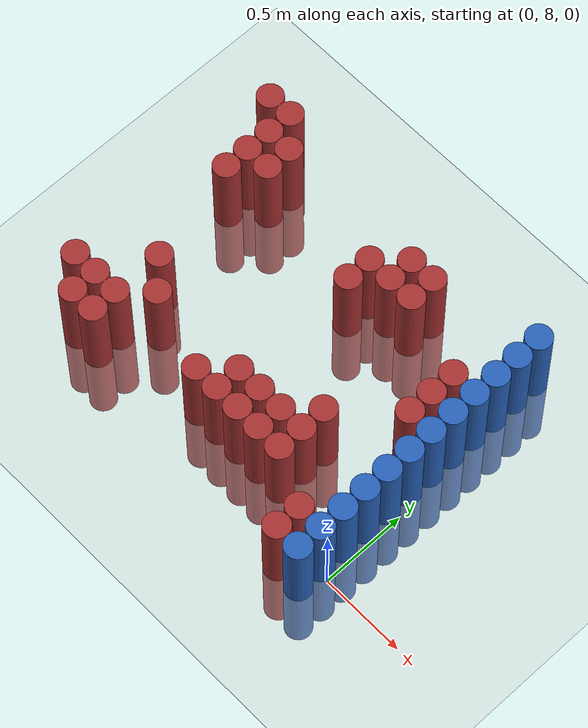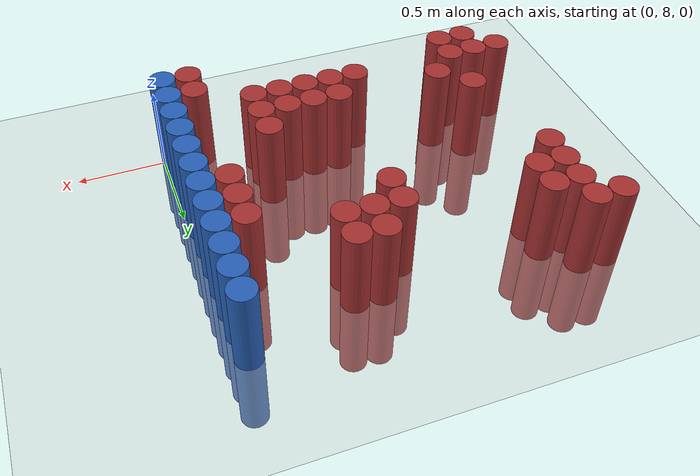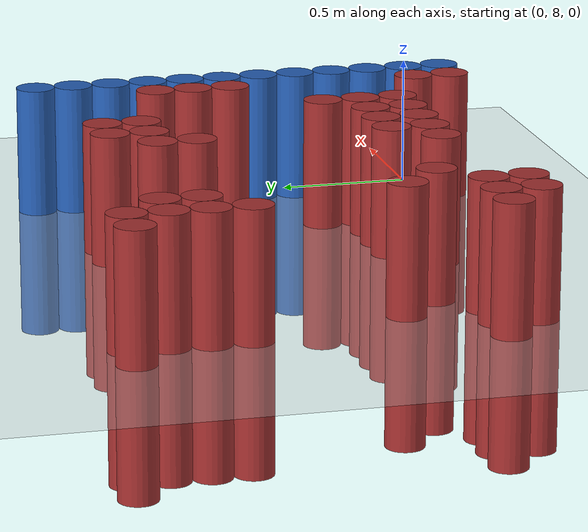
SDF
<sdf version="1.6">
 <world name="default">
  <model name="ground_plane">
   <static>1</static>
   <link name="link">
    <collision name="collision">
     <geometry><plane><normal>0 0 1</normal><size>100 100</size></plane></geometry>
     <surface><friction><ode><mu>100</mu><mu2>50</mu2></ode></friction></surface>
    </collision>
    <visual name="visual">
     <cast_shadows>0</cast_shadows>
     <geometry><plane><normal>0 0 1</normal><size>100 100</size></plane></geometry>
     <material>
      <script><uri>file://media/materials/scripts/gazebo.material</uri><name>Gazebo/Grey</name></script>
     </material>
    </visual>
   </link>
  </model>
  <model name="unit_cylinder_180">
   <static>1</static>
   <pose>-2.025000 8.175000 0.000000 0.000000 0.000000 0.000000</pose>
   <link name="link">
    <inertial>
     <mass>1</mass>
     <inertia><ixx>0.145833</ixx><ixy>0</ixy><ixz>0</ixz><iyy>0.145833</iyy><iyz>0</iyz><izz>0.125</izz></inertia>
    </inertial>
    <collision name="collision">
     <geometry><cylinder><radius>0.075000</radius><length>1</length></cylinder></geometry>
    </collision>
    <visual name="visual">
     <geometry><cylinder><radius>0.075000</radius><length>1</length></cylinder></geometry>
     <material>
      <ambient>0.648000 0.192000 0.192000 1</ambient>
      <diffuse>0.648000 0.192000 0.192000 1</diffuse>
     </material>
     <material>
      <script><name>Gazebo/Grey</name><uri>file://media/materials/scripts/gazebo.material</uri></script>
     </material>
    </visual>
   </link>
  </model>
  <model name="unit_cylinder_181">
   <static>1</static>
   <pose>-2.025000 9.525000 0.000000 0.000000 0.000000 0.000000</pose>
   <link name="link">
    <inertial>
     <mass>1</mass>
     <inertia><ixx>0.145833</ixx><ixy>0</ixy><ixz>0</ixz><iyy>0.145833</iyy><iyz>0</iyz><izz>0.125</izz></inertia>
    </inertial>
    <collision name="collision">
     <geometry><cylinder><radius>0.075000</radius><length>1</length></cylinder></geometry>
    </collision>
    <visual name="visual">
     <geometry><cylinder><radius>0.075000</radius><length>1</length></cylinder></geometry>
     <material>
      <ambient>0.648000 0.192000 0.192000 1</ambient>
      <diffuse>0.648000 0.192000 0.192000 1</diffuse>
     </material>
     <material>
      <script><name>Gazebo/Grey</name><uri>file://media/materials/scripts/gazebo.material</uri></script>
     </material>
    </visual>
   </link>
  </model>
  <model name="unit_cylinder_183">
   <static>1</static>
   <pose>-1.875000 8.025000 0.000000 0.000000 0.000000 0.000000</pose>
   <link name="link">
    <inertial>
     <mass>1</mass>
     <inertia><ixx>0.145833</ixx><ixy>0</ixy><ixz>0</ixz><iyy>0.145833</iyy><iyz>0</iyz><izz>0.125</izz></inertia>
    </inertial>
    <collision name="collision">
     <geometry><cylinder><radius>0.075000</radius><length>1</length></cylinder></geometry>
    </collision>
    <visual name="visual">
     <geometry><cylinder><radius>0.075000</radius><length>1</length></cylinder></geometry>
     <material>
      <ambient>0.648000 0.192000 0.192000 1</ambient>
      <diffuse>0.648000 0.192000 0.192000 1</diffuse>
     </material>
     <material>
      <script><name>Gazebo/Grey</name><uri>file://media/materials/scripts/gazebo.material</uri></script>
     </material>
    </visual>
   </link>
  </model>
  <model name="unit_cylinder_184">
   <static>1</static>
   <pose>-1.875000 8.175000 0.000000 0.000000 0.000000 0.000000</pose>
   <link name="link">
    <inertial>
     <mass>1</mass>
     <inertia><ixx>0.145833</ixx><ixy>0</ixy><ixz>0</ixz><iyy>0.145833</iyy><iyz>0</iyz><izz>0.125</izz></inertia>
    </inertial>
    <collision name="collision">
     <geometry><cylinder><radius>0.075000</radius><length>1</length></cylinder></geometry>
    </collision>
    <visual name="visual">
     <geometry><cylinder><radius>0.075000</radius><length>1</length></cylinder></geometry>
     <material>
      <ambient>0.648000 0.192000 0.192000 1</ambient>
      <diffuse>0.648000 0.192000 0.192000 1</diffuse>
     </material>
     <material>
      <script><name>Gazebo/Grey</name><uri>file://media/materials/scripts/gazebo.material</uri></script>
     </material>
    </visual>
   </link>
  </model>
  <model name="unit_cylinder_185">
   <static>1</static>
   <pose>-1.875000 9.075000 0.000000 0.000000 0.000000 0.000000</pose>
   <link name="link">
    <inertial>
     <mass>1</mass>
     <inertia><ixx>0.145833</ixx><ixy>0</ixy><ixz>0</ixz><iyy>0.145833</iyy><iyz>0</iyz><izz>0.125</izz></inertia>
    </inertial>
    <collision name="collision">
     <geometry><cylinder><radius>0.075000</radius><length>1</length></cylinder></geometry>
    </collision>
    <visual name="visual">
     <geometry><cylinder><radius>0.075000</radius><length>1</length></cylinder></geometry>
     <material>
      <ambient>0.648000 0.192000 0.192000 1</ambient>
      <diffuse>0.648000 0.192000 0.192000 1</diffuse>
     </material>
     <material>
      <script><name>Gazebo/Grey</name><uri>file://media/materials/scripts/gazebo.material</uri></script>
     </material>
    </visual>
   </link>
  </model>
  <model name="unit_cylinder_186">
   <static>1</static>
   <pose>-1.875000 9.225000 0.000000 0.000000 0.000000 0.000000</pose>
   <link name="link">
    <inertial>
     <mass>1</mass>
     <inertia><ixx>0.145833</ixx><ixy>0</ixy><ixz>0</ixz><iyy>0.145833</iyy><iyz>0</iyz><izz>0.125</izz></inertia>
    </inertial>
    <collision name="collision">
     <geometry><cylinder><radius>0.075000</radius><length>1</length></cylinder></geometry>
    </collision>
    <visual name="visual">
     <geometry><cylinder><radius>0.075000</radius><length>1</length></cylinder></geometry>
     <material>
      <ambient>0.648000 0.192000 0.192000 1</ambient>
      <diffuse>0.648000 0.192000 0.192000 1</diffuse>
     </material>
     <material>
      <script><name>Gazebo/Grey</name><uri>file://media/materials/scripts/gazebo.material</uri></script>
     </material>
    </visual>
   </link>
  </model>
  <model name="unit_cylinder_187">
   <static>1</static>
   <pose>-1.875000 9.375000 0.000000 0.000000 0.000000 0.000000</pose>
   <link name="link">
    <inertial>
     <mass>1</mass>
     <inertia><ixx>0.145833</ixx><ixy>0</ixy><ixz>0</ixz><iyy>0.145833</iyy><iyz>0</iyz><izz>0.125</izz></inertia>
    </inertial>
    <collision name="collision">
     <geometry><cylinder><radius>0.075000</radius><length>1</length></cylinder></geometry>
    </collision>
    <visual name="visual">
     <geometry><cylinder><radius>0.075000</radius><length>1</length></cylinder></geometry>
     <material>
      <ambient>0.648000 0.192000 0.192000 1</ambient>
      <diffuse>0.648000 0.192000 0.192000 1</diffuse>
     </material>
     <material>
      <script><name>Gazebo/Grey</name><uri>file://media/materials/scripts/gazebo.material</uri></script>
     </material>
    </visual>
   </link>
  </model>
  <model name="unit_cylinder_188">
   <static>1</static>
   <pose>-1.875000 9.525000 0.000000 0.000000 0.000000 0.000000</pose>
   <link name="link">
    <inertial>
     <mass>1</mass>
     <inertia><ixx>0.145833</ixx><ixy>0</ixy><ixz>0</ixz><iyy>0.145833</iyy><iyz>0</iyz><izz>0.125</izz></inertia>
    </inertial>
    <collision name="collision">
     <geometry><cylinder><radius>0.075000</radius><length>1</length></cylinder></geometry>
    </collision>
    <visual name="visual">
     <geometry><cylinder><radius>0.075000</radius><length>1</length></cylinder></geometry>
     <material>
      <ambient>0.648000 0.192000 0.192000 1</ambient>
      <diffuse>0.648000 0.192000 0.192000 1</diffuse>
     </material>
     <material>
      <script><name>Gazebo/Grey</name><uri>file://media/materials/scripts/gazebo.material</uri></script>
     </material>
    </visual>
   </link>
  </model>
  <model name="unit_cylinder_190">
   <static>1</static>
   <pose>-1.725000 8.025000 0.000000 0.000000 0.000000 0.000000</pose>
   <link name="link">
    <inertial>
     <mass>1</mass>
     <inertia><ixx>0.145833</ixx><ixy>0</ixy><ixz>0</ixz><iyy>0.145833</iyy><iyz>0</iyz><izz>0.125</izz></inertia>
    </inertial>
    <collision name="collision">
     <geometry><cylinder><radius>0.075000</radius><length>1</length></cylinder></geometry>
    </collision>
    <visual name="visual">
     <geometry><cylinder><radius>0.075000</radius><length>1</length></cylinder></geometry>
     <material>
      <ambient>0.648000 0.192000 0.192000 1</ambient>
      <diffuse>0.648000 0.192000 0.192000 1</diffuse>
     </material>
     <material>
      <script><name>Gazebo/Grey</name><uri>file://media/materials/scripts/gazebo.material</uri></script>
     </material>
    </visual>
   </link>
  </model>
  <model name="unit_cylinder_191">
   <static>1</static>
   <pose>-1.725000 8.175000 0.000000 0.000000 0.000000 0.000000</pose>
   <link name="link">
    <inertial>
     <mass>1</mass>
     <inertia><ixx>0.145833</ixx><ixy>0</ixy><ixz>0</ixz><iyy>0.145833</iyy><iyz>0</iyz><izz>0.125</izz></inertia>
    </inertial>
    <collision name="collision">
     <geometry><cylinder><radius>0.075000</radius><length>1</length></cylinder></geometry>
    </collision>
    <visual name="visual">
     <geometry><cylinder><radius>0.075000</radius><length>1</length></cylinder></geometry>
     <material>
      <ambient>0.648000 0.192000 0.192000 1</ambient>
      <diffuse>0.648000 0.192000 0.192000 1</diffuse>
     </material>
     <material>
      <script><name>Gazebo/Grey</name><uri>file://media/materials/scripts/gazebo.material</uri></script>
     </material>
    </visual>
   </link>
  </model>
  <model name="unit_cylinder_192">
   <static>1</static>
   <pose>-1.725000 8.475000 0.000000 0.000000 0.000000 0.000000</pose>
   <link name="link">
    <inertial>
     <mass>1</mass>
     <inertia><ixx>0.145833</ixx><ixy>0</ixy><ixz>0</ixz><iyy>0.145833</iyy><iyz>0</iyz><izz>0.125</izz></inertia>
    </inertial>
    <collision name="collision">
     <geometry><cylinder><radius>0.075000</radius><length>1</length></cylinder></geometry>
    </collision>
    <visual name="visual">
     <geometry><cylinder><radius>0.075000</radius><length>1</length></cylinder></geometry>
     <material>
      <ambient>0.648000 0.192000 0.192000 1</ambient>
      <diffuse>0.648000 0.192000 0.192000 1</diffuse>
     </material>
     <material>
      <script><name>Gazebo/Grey</name><uri>file://media/materials/scripts/gazebo.material</uri></script>
     </material>
    </visual>
   </link>
  </model>
  <model name="unit_cylinder_193">
   <static>1</static>
   <pose>-1.725000 9.225000 0.000000 0.000000 0.000000 0.000000</pose>
   <link name="link">
    <inertial>
     <mass>1</mass>
     <inertia><ixx>0.145833</ixx><ixy>0</ixy><ixz>0</ixz><iyy>0.145833</iyy><iyz>0</iyz><izz>0.125</izz></inertia>
    </inertial>
    <collision name="collision">
     <geometry><cylinder><radius>0.075000</radius><length>1</length></cylinder></geometry>
    </collision>
    <visual name="visual">
     <geometry><cylinder><radius>0.075000</radius><length>1</length></cylinder></geometry>
     <material>
      <ambient>0.648000 0.192000 0.192000 1</ambient>
      <diffuse>0.648000 0.192000 0.192000 1</diffuse>
     </material>
     <material>
      <script><name>Gazebo/Grey</name><uri>file://media/materials/scripts/gazebo.material</uri></script>
     </material>
    </visual>
   </link>
  </model>
  <model name="unit_cylinder_194">
   <static>1</static>
   <pose>-1.725000 9.375000 0.000000 0.000000 0.000000 0.000000</pose>
   <link name="link">
    <inertial>
     <mass>1</mass>
     <inertia><ixx>0.145833</ixx><ixy>0</ixy><ixz>0</ixz><iyy>0.145833</iyy><iyz>0</iyz><izz>0.125</izz></inertia>
    </inertial>
    <collision name="collision">
     <geometry><cylinder><radius>0.075000</radius><length>1</length></cylinder></geometry>
    </collision>
    <visual name="visual">
     <geometry><cylinder><radius>0.075000</radius><length>1</length></cylinder></geometry>
     <material>
      <ambient>0.648000 0.192000 0.192000 1</ambient>
      <diffuse>0.648000 0.192000 0.192000 1</diffuse>
     </material>
     <material>
      <script><name>Gazebo/Grey</name><uri>file://media/materials/scripts/gazebo.material</uri></script>
     </material>
    </visual>
   </link>
  </model>
  <model name="unit_cylinder_195">
   <static>1</static>
   <pose>-1.575000 8.325000 0.000000 0.000000 0.000000 0.000000</pose>
   <link name="link">
    <inertial>
     <mass>1</mass>
     <inertia><ixx>0.145833</ixx><ixy>0</ixy><ixz>0</ixz><iyy>0.145833</iyy><iyz>0</iyz><izz>0.125</izz></inertia>
    </inertial>
    <collision name="collision">
     <geometry><cylinder><radius>0.075000</radius><length>1</length></cylinder></geometry>
    </collision>
    <visual name="visual">
     <geometry><cylinder><radius>0.075000</radius><length>1</length></cylinder></geometry>
     <material>
      <ambient>0.648000 0.192000 0.192000 1</ambient>
      <diffuse>0.648000 0.192000 0.192000 1</diffuse>
     </material>
     <material>
      <script><name>Gazebo/Grey</name><uri>file://media/materials/scripts/gazebo.material</uri></script>
     </material>
    </visual>
   </link>
  </model>
  <model name="unit_cylinder_207">
   <static>1</static>
   <pose>-1.125000 8.175000 0.000000 0.000000 0.000000 0.000000</pose>
   <link name="link">
    <inertial>
     <mass>1</mass>
     <inertia><ixx>0.145833</ixx><ixy>0</ixy><ixz>0</ixz><iyy>0.145833</iyy><iyz>0</iyz><izz>0.125</izz></inertia>
    </inertial>
    <collision name="collision">
     <geometry><cylinder><radius>0.075000</radius><length>1</length></cylinder></geometry>
    </collision>
    <visual name="visual">
     <geometry><cylinder><radius>0.075000</radius><length>1</length></cylinder></geometry>
     <material>
      <ambient>0.648000 0.192000 0.192000 1</ambient>
      <diffuse>0.648000 0.192000 0.192000 1</diffuse>
     </material>
     <material>
      <script><name>Gazebo/Grey</name><uri>file://media/materials/scripts/gazebo.material</uri></script>
     </material>
    </visual>
   </link>
  </model>
  <model name="unit_cylinder_211">
   <static>1</static>
   <pose>-0.975000 8.175000 0.000000 0.000000 0.000000 0.000000</pose>
   <link name="link">
    <inertial>
     <mass>1</mass>
     <inertia><ixx>0.145833</ixx><ixy>0</ixy><ixz>0</ixz><iyy>0.145833</iyy><iyz>0</iyz><izz>0.125</izz></inertia>
    </inertial>
    <collision name="collision">
     <geometry><cylinder><radius>0.075000</radius><length>1</length></cylinder></geometry>
    </collision>
    <visual name="visual">
     <geometry><cylinder><radius>0.075000</radius><length>1</length></cylinder></geometry>
     <material>
      <ambient>0.648000 0.192000 0.192000 1</ambient>
      <diffuse>0.648000 0.192000 0.192000 1</diffuse>
     </material>
     <material>
      <script><name>Gazebo/Grey</name><uri>file://media/materials/scripts/gazebo.material</uri></script>
     </material>
    </visual>
   </link>
  </model>
  <model name="unit_cylinder_212">
   <static>1</static>
   <pose>-0.975000 8.325000 0.000000 0.000000 0.000000 0.000000</pose>
   <link name="link">
    <inertial>
     <mass>1</mass>
     <inertia><ixx>0.145833</ixx><ixy>0</ixy><ixz>0</ixz><iyy>0.145833</iyy><iyz>0</iyz><izz>0.125</izz></inertia>
    </inertial>
    <collision name="collision">
     <geometry><cylinder><radius>0.075000</radius><length>1</length></cylinder></geometry>
    </collision>
    <visual name="visual">
     <geometry><cylinder><radius>0.075000</radius><length>1</length></cylinder></geometry>
     <material>
      <ambient>0.648000 0.192000 0.192000 1</ambient>
      <diffuse>0.648000 0.192000 0.192000 1</diffuse>
     </material>
     <material>
      <script><name>Gazebo/Grey</name><uri>file://media/materials/scripts/gazebo.material</uri></script>
     </material>
    </visual>
   </link>
  </model>
  <model name="unit_cylinder_213">
   <static>1</static>
   <pose>-0.975000 9.075000 0.000000 0.000000 0.000000 0.000000</pose>
   <link name="link">
    <inertial>
     <mass>1</mass>
     <inertia><ixx>0.145833</ixx><ixy>0</ixy><ixz>0</ixz><iyy>0.145833</iyy><iyz>0</iyz><izz>0.125</izz></inertia>
    </inertial>
    <collision name="collision">
     <geometry><cylinder><radius>0.075000</radius><length>1</length></cylinder></geometry>
    </collision>
    <visual name="visual">
     <geometry><cylinder><radius>0.075000</radius><length>1</length></cylinder></geometry>
     <material>
      <ambient>0.648000 0.192000 0.192000 1</ambient>
      <diffuse>0.648000 0.192000 0.192000 1</diffuse>
     </material>
     <material>
      <script><name>Gazebo/Grey</name><uri>file://media/materials/scripts/gazebo.material</uri></script>
     </material>
    </visual>
   </link>
  </model>
  <model name="unit_cylinder_214">
   <static>1</static>
   <pose>-0.975000 9.225000 0.000000 0.000000 0.000000 0.000000</pose>
   <link name="link">
    <inertial>
     <mass>1</mass>
     <inertia><ixx>0.145833</ixx><ixy>0</ixy><ixz>0</ixz><iyy>0.145833</iyy><iyz>0</iyz><izz>0.125</izz></inertia>
    </inertial>
    <collision name="collision">
     <geometry><cylinder><radius>0.075000</radius><length>1</length></cylinder></geometry>
    </collision>
    <visual name="visual">
     <geometry><cylinder><radius>0.075000</radius><length>1</length></cylinder></geometry>
     <material>
      <ambient>0.648000 0.192000 0.192000 1</ambient>
      <diffuse>0.648000 0.192000 0.192000 1</diffuse>
     </material>
     <material>
      <script><name>Gazebo/Grey</name><uri>file://media/materials/scripts/gazebo.material</uri></script>
     </material>
    </visual>
   </link>
  </model>
  <model name="unit_cylinder_219">
   <static>1</static>
   <pose>-0.825000 8.175000 0.000000 0.000000 0.000000 0.000000</pose>
   <link name="link">
    <inertial>
     <mass>1</mass>
     <inertia><ixx>0.145833</ixx><ixy>0</ixy><ixz>0</ixz><iyy>0.145833</iyy><iyz>0</iyz><izz>0.125</izz></inertia>
    </inertial>
    <collision name="collision">
     <geometry><cylinder><radius>0.075000</radius><length>1</length></cylinder></geometry>
    </collision>
    <visual name="visual">
     <geometry><cylinder><radius>0.075000</radius><length>1</length></cylinder></geometry>
     <material>
      <ambient>0.648000 0.192000 0.192000 1</ambient>
      <diffuse>0.648000 0.192000 0.192000 1</diffuse>
     </material>
     <material>
      <script><name>Gazebo/Grey</name><uri>file://media/materials/scripts/gazebo.material</uri></script>
     </material>
    </visual>
   </link>
  </model>
  <model name="unit_cylinder_220">
   <static>1</static>
   <pose>-0.825000 8.325000 0.000000 0.000000 0.000000 0.000000</pose>
   <link name="link">
    <inertial>
     <mass>1</mass>
     <inertia><ixx>0.145833</ixx><ixy>0</ixy><ixz>0</ixz><iyy>0.145833</iyy><iyz>0</iyz><izz>0.125</izz></inertia>
    </inertial>
    <collision name="collision">
     <geometry><cylinder><radius>0.075000</radius><length>1</length></cylinder></geometry>
    </collision>
    <visual name="visual">
     <geometry><cylinder><radius>0.075000</radius><length>1</length></cylinder></geometry>
     <material>
      <ambient>0.648000 0.192000 0.192000 1</ambient>
      <diffuse>0.648000 0.192000 0.192000 1</diffuse>
     </material>
     <material>
      <script><name>Gazebo/Grey</name><uri>file://media/materials/scripts/gazebo.material</uri></script>
     </material>
    </visual>
   </link>
  </model>
  <model name="unit_cylinder_221">
   <static>1</static>
   <pose>-0.825000 9.225000 0.000000 0.000000 0.000000 0.000000</pose>
   <link name="link">
    <inertial>
     <mass>1</mass>
     <inertia><ixx>0.145833</ixx><ixy>0</ixy><ixz>0</ixz><iyy>0.145833</iyy><iyz>0</iyz><izz>0.125</izz></inertia>
    </inertial>
    <collision name="collision">
     <geometry><cylinder><radius>0.075000</radius><length>1</length></cylinder></geometry>
    </collision>
    <visual name="visual">
     <geometry><cylinder><radius>0.075000</radius><length>1</length></cylinder></geometry>
     <material>
      <ambient>0.648000 0.192000 0.192000 1</ambient>
      <diffuse>0.648000 0.192000 0.192000 1</diffuse>
     </material>
     <material>
      <script><name>Gazebo/Grey</name><uri>file://media/materials/scripts/gazebo.material</uri></script>
     </material>
    </visual>
   </link>
  </model>
  <model name="unit_cylinder_222">
   <static>1</static>
   <pose>-0.825000 9.375000 0.000000 0.000000 0.000000 0.000000</pose>
   <link name="link">
    <inertial>
     <mass>1</mass>
     <inertia><ixx>0.145833</ixx><ixy>0</ixy><ixz>0</ixz><iyy>0.145833</iyy><iyz>0</iyz><izz>0.125</izz></inertia>
    </inertial>
    <collision name="collision">
     <geometry><cylinder><radius>0.075000</radius><length>1</length></cylinder></geometry>
    </collision>
    <visual name="visual">
     <geometry><cylinder><radius>0.075000</radius><length>1</length></cylinder></geometry>
     <material>
      <ambient>0.648000 0.192000 0.192000 1</ambient>
      <diffuse>0.648000 0.192000 0.192000 1</diffuse>
     </material>
     <material>
      <script><name>Gazebo/Grey</name><uri>file://media/materials/scripts/gazebo.material</uri></script>
     </material>
    </visual>
   </link>
  </model>
  <model name="unit_cylinder_224">
   <static>1</static>
   <pose>-0.675000 8.175000 0.000000 0.000000 0.000000 0.000000</pose>
   <link name="link">
    <inertial>
     <mass>1</mass>
     <inertia><ixx>0.145833</ixx><ixy>0</ixy><ixz>0</ixz><iyy>0.145833</iyy><iyz>0</iyz><izz>0.125</izz></inertia>
    </inertial>
    <collision name="collision">
     <geometry><cylinder><radius>0.075000</radius><length>1</length></cylinder></geometry>
    </collision>
    <visual name="visual">
     <geometry><cylinder><radius>0.075000</radius><length>1</length></cylinder></geometry>
     <material>
      <ambient>0.648000 0.192000 0.192000 1</ambient>
      <diffuse>0.648000 0.192000 0.192000 1</diffuse>
     </material>
     <material>
      <script><name>Gazebo/Grey</name><uri>file://media/materials/scripts/gazebo.material</uri></script>
     </material>
    </visual>
   </link>
  </model>
  <model name="unit_cylinder_225">
   <static>1</static>
   <pose>-0.675000 8.325000 0.000000 0.000000 0.000000 0.000000</pose>
   <link name="link">
    <inertial>
     <mass>1</mass>
     <inertia><ixx>0.145833</ixx><ixy>0</ixy><ixz>0</ixz><iyy>0.145833</iyy><iyz>0</iyz><izz>0.125</izz></inertia>
    </inertial>
    <collision name="collision">
     <geometry><cylinder><radius>0.075000</radius><length>1</length></cylinder></geometry>
    </collision>
    <visual name="visual">
     <geometry><cylinder><radius>0.075000</radius><length>1</length></cylinder></geometry>
     <material>
      <ambient>0.648000 0.192000 0.192000 1</ambient>
      <diffuse>0.648000 0.192000 0.192000 1</diffuse>
     </material>
     <material>
      <script><name>Gazebo/Grey</name><uri>file://media/materials/scripts/gazebo.material</uri></script>
     </material>
    </visual>
   </link>
  </model>
  <model name="unit_cylinder_226">
   <static>1</static>
   <pose>-0.675000 9.225000 0.000000 0.000000 0.000000 0.000000</pose>
   <link name="link">
    <inertial>
     <mass>1</mass>
     <inertia><ixx>0.145833</ixx><ixy>0</ixy><ixz>0</ixz><iyy>0.145833</iyy><iyz>0</iyz><izz>0.125</izz></inertia>
    </inertial>
    <collision name="collision">
     <geometry><cylinder><radius>0.075000</radius><length>1</length></cylinder></geometry>
    </collision>
    <visual name="visual">
     <geometry><cylinder><radius>0.075000</radius><length>1</length></cylinder></geometry>
     <material>
      <ambient>0.648000 0.192000 0.192000 1</ambient>
      <diffuse>0.648000 0.192000 0.192000 1</diffuse>
     </material>
     <material>
      <script><name>Gazebo/Grey</name><uri>file://media/materials/scripts/gazebo.material</uri></script>
     </material>
    </visual>
   </link>
  </model>
  <model name="unit_cylinder_227">
   <static>1</static>
   <pose>-0.675000 9.375000 0.000000 0.000000 0.000000 0.000000</pose>
   <link name="link">
    <inertial>
     <mass>1</mass>
     <inertia><ixx>0.145833</ixx><ixy>0</ixy><ixz>0</ixz><iyy>0.145833</iyy><iyz>0</iyz><izz>0.125</izz></inertia>
    </inertial>
    <collision name="collision">
     <geometry><cylinder><radius>0.075000</radius><length>1</length></cylinder></geometry>
    </collision>
    <visual name="visual">
     <geometry><cylinder><radius>0.075000</radius><length>1</length></cylinder></geometry>
     <material>
      <ambient>0.648000 0.192000 0.192000 1</ambient>
      <diffuse>0.648000 0.192000 0.192000 1</diffuse>
     </material>
     <material>
      <script><name>Gazebo/Grey</name><uri>file://media/materials/scripts/gazebo.material</uri></script>
     </material>
    </visual>
   </link>
  </model>
  <model name="unit_cylinder_229">
   <static>1</static>
   <pose>-0.525000 8.175000 0.000000 0.000000 0.000000 0.000000</pose>
   <link name="link">
    <inertial>
     <mass>1</mass>
     <inertia><ixx>0.145833</ixx><ixy>0</ixy><ixz>0</ixz><iyy>0.145833</iyy><iyz>0</iyz><izz>0.125</izz></inertia>
    </inertial>
    <collision name="collision">
     <geometry><cylinder><radius>0.075000</radius><length>1</length></cylinder></geometry>
    </collision>
    <visual name="visual">
     <geometry><cylinder><radius>0.075000</radius><length>1</length></cylinder></geometry>
     <material>
      <ambient>0.648000 0.192000 0.192000 1</ambient>
      <diffuse>0.648000 0.192000 0.192000 1</diffuse>
     </material>
     <material>
      <script><name>Gazebo/Grey</name><uri>file://media/materials/scripts/gazebo.material</uri></script>
     </material>
    </visual>
   </link>
  </model>
  <model name="unit_cylinder_230">
   <static>1</static>
   <pose>-0.525000 8.325000 0.000000 0.000000 0.000000 0.000000</pose>
   <link name="link">
    <inertial>
     <mass>1</mass>
     <inertia><ixx>0.145833</ixx><ixy>0</ixy><ixz>0</ixz><iyy>0.145833</iyy><iyz>0</iyz><izz>0.125</izz></inertia>
    </inertial>
    <collision name="collision">
     <geometry><cylinder><radius>0.075000</radius><length>1</length></cylinder></geometry>
    </collision>
    <visual name="visual">
     <geometry><cylinder><radius>0.075000</radius><length>1</length></cylinder></geometry>
     <material>
      <ambient>0.648000 0.192000 0.192000 1</ambient>
      <diffuse>0.648000 0.192000 0.192000 1</diffuse>
     </material>
     <material>
      <script><name>Gazebo/Grey</name><uri>file://media/materials/scripts/gazebo.material</uri></script>
     </material>
    </visual>
   </link>
  </model>
  <model name="unit_cylinder_231">
   <static>1</static>
   <pose>-0.525000 8.475000 0.000000 0.000000 0.000000 0.000000</pose>
   <link name="link">
    <inertial>
     <mass>1</mass>
     <inertia><ixx>0.145833</ixx><ixy>0</ixy><ixz>0</ixz><iyy>0.145833</iyy><iyz>0</iyz><izz>0.125</izz></inertia>
    </inertial>
    <collision name="collision">
     <geometry><cylinder><radius>0.075000</radius><length>1</length></cylinder></geometry>
    </collision>
    <visual name="visual">
     <geometry><cylinder><radius>0.075000</radius><length>1</length></cylinder></geometry>
     <material>
      <ambient>0.648000 0.192000 0.192000 1</ambient>
      <diffuse>0.648000 0.192000 0.192000 1</diffuse>
     </material>
     <material>
      <script><name>Gazebo/Grey</name><uri>file://media/materials/scripts/gazebo.material</uri></script>
     </material>
    </visual>
   </link>
  </model>
  <model name="unit_cylinder_247">
   <static>1</static>
   <pose>-0.225000 7.875000 0.000000 0.000000 0.000000 0.000000</pose>
   <link name="link">
    <inertial>
     <mass>1</mass>
     <inertia><ixx>0.145833</ixx><ixy>0</ixy><ixz>0</ixz><iyy>0.145833</iyy><iyz>0</iyz><izz>0.125</izz></inertia>
    </inertial>
    <collision name="collision">
     <geometry><cylinder><radius>0.075000</radius><length>1</length></cylinder></geometry>
    </collision>
    <visual name="visual">
     <geometry><cylinder><radius>0.075000</radius><length>1</length></cylinder></geometry>
     <material>
      <ambient>0.648000 0.192000 0.192000 1</ambient>
      <diffuse>0.648000 0.192000 0.192000 1</diffuse>
     </material>
     <material>
      <script><name>Gazebo/Grey</name><uri>file://media/materials/scripts/gazebo.material</uri></script>
     </material>
    </visual>
   </link>
  </model>
  <model name="unit_cylinder_248">
   <static>1</static>
   <pose>-0.225000 8.025000 0.000000 0.000000 0.000000 0.000000</pose>
   <link name="link">
    <inertial>
     <mass>1</mass>
     <inertia><ixx>0.145833</ixx><ixy>0</ixy><ixz>0</ixz><iyy>0.145833</iyy><iyz>0</iyz><izz>0.125</izz></inertia>
    </inertial>
    <collision name="collision">
     <geometry><cylinder><radius>0.075000</radius><length>1</length></cylinder></geometry>
    </collision>
    <visual name="visual">
     <geometry><cylinder><radius>0.075000</radius><length>1</length></cylinder></geometry>
     <material>
      <ambient>0.648000 0.192000 0.192000 1</ambient>
      <diffuse>0.648000 0.192000 0.192000 1</diffuse>
     </material>
     <material>
      <script><name>Gazebo/Grey</name><uri>file://media/materials/scripts/gazebo.material</uri></script>
     </material>
    </visual>
   </link>
  </model>
  <model name="unit_cylinder_249">
   <static>1</static>
   <pose>-0.225000 8.775000 0.000000 0.000000 0.000000 0.000000</pose>
   <link name="link">
    <inertial>
     <mass>1</mass>
     <inertia><ixx>0.145833</ixx><ixy>0</ixy><ixz>0</ixz><iyy>0.145833</iyy><iyz>0</iyz><izz>0.125</izz></inertia>
    </inertial>
    <collision name="collision">
     <geometry><cylinder><radius>0.075000</radius><length>1</length></cylinder></geometry>
    </collision>
    <visual name="visual">
     <geometry><cylinder><radius>0.075000</radius><length>1</length></cylinder></geometry>
     <material>
      <ambient>0.648000 0.192000 0.192000 1</ambient>
      <diffuse>0.648000 0.192000 0.192000 1</diffuse>
     </material>
     <material>
      <script><name>Gazebo/Grey</name><uri>file://media/materials/scripts/gazebo.material</uri></script>
     </material>
    </visual>
   </link>
  </model>
  <model name="unit_cylinder_250">
   <static>1</static>
   <pose>-0.225000 8.925000 0.000000 0.000000 0.000000 0.000000</pose>
   <link name="link">
    <inertial>
     <mass>1</mass>
     <inertia><ixx>0.145833</ixx><ixy>0</ixy><ixz>0</ixz><iyy>0.145833</iyy><iyz>0</iyz><izz>0.125</izz></inertia>
    </inertial>
    <collision name="collision">
     <geometry><cylinder><radius>0.075000</radius><length>1</length></cylinder></geometry>
    </collision>
    <visual name="visual">
     <geometry><cylinder><radius>0.075000</radius><length>1</length></cylinder></geometry>
     <material>
      <ambient>0.648000 0.192000 0.192000 1</ambient>
      <diffuse>0.648000 0.192000 0.192000 1</diffuse>
     </material>
     <material>
      <script><name>Gazebo/Grey</name><uri>file://media/materials/scripts/gazebo.material</uri></script>
     </material>
    </visual>
   </link>
  </model>
  <model name="unit_cylinder_251">
   <static>1</static>
   <pose>-0.225000 9.075000 0.000000 0.000000 0.000000 0.000000</pose>
   <link name="link">
    <inertial>
     <mass>1</mass>
     <inertia><ixx>0.145833</ixx><ixy>0</ixy><ixz>0</ixz><iyy>0.145833</iyy><iyz>0</iyz><izz>0.125</izz></inertia>
    </inertial>
    <collision name="collision">
     <geometry><cylinder><radius>0.075000</radius><length>1</length></cylinder></geometry>
    </collision>
    <visual name="visual">
     <geometry><cylinder><radius>0.075000</radius><length>1</length></cylinder></geometry>
     <material>
      <ambient>0.648000 0.192000 0.192000 1</ambient>
      <diffuse>0.648000 0.192000 0.192000 1</diffuse>
     </material>
     <material>
      <script><name>Gazebo/Grey</name><uri>file://media/materials/scripts/gazebo.material</uri></script>
     </material>
    </visual>
   </link>
  </model>
  <model name="unit_cylinder_270">
   <static>1</static>
   <pose>-0.075000 7.875000 0.000000 0.000000 0.000000 0.000000</pose>
   <link name="link">
    <inertial>
     <mass>1</mass>
     <inertia><ixx>0.145833</ixx><ixy>0</ixy><ixz>0</ixz><iyy>0.145833</iyy><iyz>0</iyz><izz>0.125</izz></inertia>
    </inertial>
    <collision name="collision">
     <geometry><cylinder><radius>0.075000</radius><length>1</length></cylinder></geometry>
    </collision>
    <visual name="visual">
     <geometry><cylinder><radius>0.075000</radius><length>1</length></cylinder></geometry>
     <material>
      <ambient>0.152000 0.379000 0.720000 1</ambient>
      <diffuse>0.152000 0.379000 0.720000 1</diffuse>
     </material>
     <material>
      <script><name>Gazebo/Grey</name><uri>file://media/materials/scripts/gazebo.material</uri></script>
     </material>
    </visual>
   </link>
  </model>
  <model name="unit_cylinder_271">
   <static>1</static>
   <pose>-0.075000 8.025000 0.000000 0.000000 0.000000 0.000000</pose>
   <link name="link">
    <inertial>
     <mass>1</mass>
     <inertia><ixx>0.145833</ixx><ixy>0</ixy><ixz>0</ixz><iyy>0.145833</iyy><iyz>0</iyz><izz>0.125</izz></inertia>
    </inertial>
    <collision name="collision">
     <geometry><cylinder><radius>0.075000</radius><length>1</length></cylinder></geometry>
    </collision>
    <visual name="visual">
     <geometry><cylinder><radius>0.075000</radius><length>1</length></cylinder></geometry>
     <material>
      <ambient>0.152000 0.379000 0.720000 1</ambient>
      <diffuse>0.152000 0.379000 0.720000 1</diffuse>
     </material>
     <material>
      <script><name>Gazebo/Grey</name><uri>file://media/materials/scripts/gazebo.material</uri></script>
     </material>
    </visual>
   </link>
  </model>
  <model name="unit_cylinder_272">
   <static>1</static>
   <pose>-0.075000 8.175000 0.000000 0.000000 0.000000 0.000000</pose>
   <link name="link">
    <inertial>
     <mass>1</mass>
     <inertia><ixx>0.145833</ixx><ixy>0</ixy><ixz>0</ixz><iyy>0.145833</iyy><iyz>0</iyz><izz>0.125</izz></inertia>
    </inertial>
    <collision name="collision">
     <geometry><cylinder><radius>0.075000</radius><length>1</length></cylinder></geometry>
    </collision>
    <visual name="visual">
     <geometry><cylinder><radius>0.075000</radius><length>1</length></cylinder></geometry>
     <material>
      <ambient>0.152000 0.379000 0.720000 1</ambient>
      <diffuse>0.152000 0.379000 0.720000 1</diffuse>
     </material>
     <material>
      <script><name>Gazebo/Grey</name><uri>file://media/materials/scripts/gazebo.material</uri></script>
     </material>
    </visual>
   </link>
  </model>
  <model name="unit_cylinder_273">
   <static>1</static>
   <pose>-0.075000 8.325000 0.000000 0.000000 0.000000 0.000000</pose>
   <link name="link">
    <inertial>
     <mass>1</mass>
     <inertia><ixx>0.145833</ixx><ixy>0</ixy><ixz>0</ixz><iyy>0.145833</iyy><iyz>0</iyz><izz>0.125</izz></inertia>
    </inertial>
    <collision name="collision">
     <geometry><cylinder><radius>0.075000</radius><length>1</length></cylinder></geometry>
    </collision>
    <visual name="visual">
     <geometry><cylinder><radius>0.075000</radius><length>1</length></cylinder></geometry>
     <material>
      <ambient>0.152000 0.379000 0.720000 1</ambient>
      <diffuse>0.152000 0.379000 0.720000 1</diffuse>
     </material>
     <material>
      <script><name>Gazebo/Grey</name><uri>file://media/materials/scripts/gazebo.material</uri></script>
     </material>
    </visual>
   </link>
  </model>
  <model name="unit_cylinder_274">
   <static>1</static>
   <pose>-0.075000 8.475000 0.000000 0.000000 0.000000 0.000000</pose>
   <link name="link">
    <inertial>
     <mass>1</mass>
     <inertia><ixx>0.145833</ixx><ixy>0</ixy><ixz>0</ixz><iyy>0.145833</iyy><iyz>0</iyz><izz>0.125</izz></inertia>
    </inertial>
    <collision name="collision">
     <geometry><cylinder><radius>0.075000</radius><length>1</length></cylinder></geometry>
    </collision>
    <visual name="visual">
     <geometry><cylinder><radius>0.075000</radius><length>1</length></cylinder></geometry>
     <material>
      <ambient>0.152000 0.379000 0.720000 1</ambient>
      <diffuse>0.152000 0.379000 0.720000 1</diffuse>
     </material>
     <material>
      <script><name>Gazebo/Grey</name><uri>file://media/materials/scripts/gazebo.material</uri></script>
     </material>
    </visual>
   </link>
  </model>
  <model name="unit_cylinder_275">
   <static>1</static>
   <pose>-0.075000 8.625000 0.000000 0.000000 0.000000 0.000000</pose>
   <link name="link">
    <inertial>
     <mass>1</mass>
     <inertia><ixx>0.145833</ixx><ixy>0</ixy><ixz>0</ixz><iyy>0.145833</iyy><iyz>0</iyz><izz>0.125</izz></inertia>
    </inertial>
    <collision name="collision">
     <geometry><cylinder><radius>0.075000</radius><length>1</length></cylinder></geometry>
    </collision>
    <visual name="visual">
     <geometry><cylinder><radius>0.075000</radius><length>1</length></cylinder></geometry>
     <material>
      <ambient>0.152000 0.379000 0.720000 1</ambient>
      <diffuse>0.152000 0.379000 0.720000 1</diffuse>
     </material>
     <material>
      <script><name>Gazebo/Grey</name><uri>file://media/materials/scripts/gazebo.material</uri></script>
     </material>
    </visual>
   </link>
  </model>
  <model name="unit_cylinder_276">
   <static>1</static>
   <pose>-0.075000 8.775000 0.000000 0.000000 0.000000 0.000000</pose>
   <link name="link">
    <inertial>
     <mass>1</mass>
     <inertia><ixx>0.145833</ixx><ixy>0</ixy><ixz>0</ixz><iyy>0.145833</iyy><iyz>0</iyz><izz>0.125</izz></inertia>
    </inertial>
    <collision name="collision">
     <geometry><cylinder><radius>0.075000</radius><length>1</length></cylinder></geometry>
    </collision>
    <visual name="visual">
     <geometry><cylinder><radius>0.075000</radius><length>1</length></cylinder></geometry>
     <material>
      <ambient>0.152000 0.379000 0.720000 1</ambient>
      <diffuse>0.152000 0.379000 0.720000 1</diffuse>
     </material>
     <material>
      <script><name>Gazebo/Grey</name><uri>file://media/materials/scripts/gazebo.material</uri></script>
     </material>
    </visual>
   </link>
  </model>
  <model name="unit_cylinder_277">
   <static>1</static>
   <pose>-0.075000 8.925000 0.000000 0.000000 0.000000 0.000000</pose>
   <link name="link">
    <inertial>
     <mass>1</mass>
     <inertia><ixx>0.145833</ixx><ixy>0</ixy><ixz>0</ixz><iyy>0.145833</iyy><iyz>0</iyz><izz>0.125</izz></inertia>
    </inertial>
    <collision name="collision">
     <geometry><cylinder><radius>0.075000</radius><length>1</length></cylinder></geometry>
    </collision>
    <visual name="visual">
     <geometry><cylinder><radius>0.075000</radius><length>1</length></cylinder></geometry>
     <material>
      <ambient>0.152000 0.379000 0.720000 1</ambient>
      <diffuse>0.152000 0.379000 0.720000 1</diffuse>
     </material>
     <material>
      <script><name>Gazebo/Grey</name><uri>file://media/materials/scripts/gazebo.material</uri></script>
     </material>
    </visual>
   </link>
  </model>
  <model name="unit_cylinder_278">
   <static>1</static>
   <pose>-0.075000 9.075000 0.000000 0.000000 0.000000 0.000000</pose>
   <link name="link">
    <inertial>
     <mass>1</mass>
     <inertia><ixx>0.145833</ixx><ixy>0</ixy><ixz>0</ixz><iyy>0.145833</iyy><iyz>0</iyz><izz>0.125</izz></inertia>
    </inertial>
    <collision name="collision">
     <geometry><cylinder><radius>0.075000</radius><length>1</length></cylinder></geometry>
    </collision>
    <visual name="visual">
     <geometry><cylinder><radius>0.075000</radius><length>1</length></cylinder></geometry>
     <material>
      <ambient>0.152000 0.379000 0.720000 1</ambient>
      <diffuse>0.152000 0.379000 0.720000 1</diffuse>
     </material>
     <material>
      <script><name>Gazebo/Grey</name><uri>file://media/materials/scripts/gazebo.material</uri></script>
     </material>
    </visual>
   </link>
  </model>
  <model name="unit_cylinder_279">
   <static>1</static>
   <pose>-0.075000 9.225000 0.000000 0.000000 0.000000 0.000000</pose>
   <link name="link">
    <inertial>
     <mass>1</mass>
     <inertia><ixx>0.145833</ixx><ixy>0</ixy><ixz>0</ixz><iyy>0.145833</iyy><iyz>0</iyz><izz>0.125</izz></inertia>
    </inertial>
    <collision name="collision">
     <geometry><cylinder><radius>0.075000</radius><length>1</length></cylinder></geometry>
    </collision>
    <visual name="visual">
     <geometry><cylinder><radius>0.075000</radius><length>1</length></cylinder></geometry>
     <material>
      <ambient>0.152000 0.379000 0.720000 1</ambient>
      <diffuse>0.152000 0.379000 0.720000 1</diffuse>
     </material>
     <material>
      <script><name>Gazebo/Grey</name><uri>file://media/materials/scripts/gazebo.material</uri></script>
     </material>
    </visual>
   </link>
  </model>
  <model name="unit_cylinder_280">
   <static>1</static>
   <pose>-0.075000 9.375000 0.000000 0.000000 0.000000 0.000000</pose>
   <link name="link">
    <inertial>
     <mass>1</mass>
     <inertia><ixx>0.145833</ixx><ixy>0</ixy><ixz>0</ixz><iyy>0.145833</iyy><iyz>0</iyz><izz>0.125</izz></inertia>
    </inertial>
    <collision name="collision">
     <geometry><cylinder><radius>0.075000</radius><length>1</length></cylinder></geometry>
    </collision>
    <visual name="visual">
     <geometry><cylinder><radius>0.075000</radius><length>1</length></cylinder></geometry>
     <material>
      <ambient>0.152000 0.379000 0.720000 1</ambient>
      <diffuse>0.152000 0.379000 0.720000 1</diffuse>
     </material>
     <material>
      <script><name>Gazebo/Grey</name><uri>file://media/materials/scripts/gazebo.material</uri></script>
     </material>
    </visual>
   </link>
  </model>
  <model name="unit_cylinder_281">
   <static>1</static>
   <pose>-0.075000 9.525000 0.000000 0.000000 0.000000 0.000000</pose>
   <link name="link">
    <inertial>
     <mass>1</mass>
     <inertia><ixx>0.145833</ixx><ixy>0</ixy><ixz>0</ixz><iyy>0.145833</iyy><iyz>0</iyz><izz>0.125</izz></inertia>
    </inertial>
    <collision name="collision">
     <geometry><cylinder><radius>0.075000</radius><length>1</length></cylinder></geometry>
    </collision>
    <visual name="visual">
     <geometry><cylinder><radius>0.075000</radius><length>1</length></cylinder></geometry>
     <material>
      <ambient>0.152000 0.379000 0.720000 1</ambient>
      <diffuse>0.152000 0.379000 0.720000 1</diffuse>
     </material>
     <material>
      <script><name>Gazebo/Grey</name><uri>file://media/materials/scripts/gazebo.material</uri></script>
     </material>
    </visual>
   </link>
  </model>
 </world>
</sdf>
